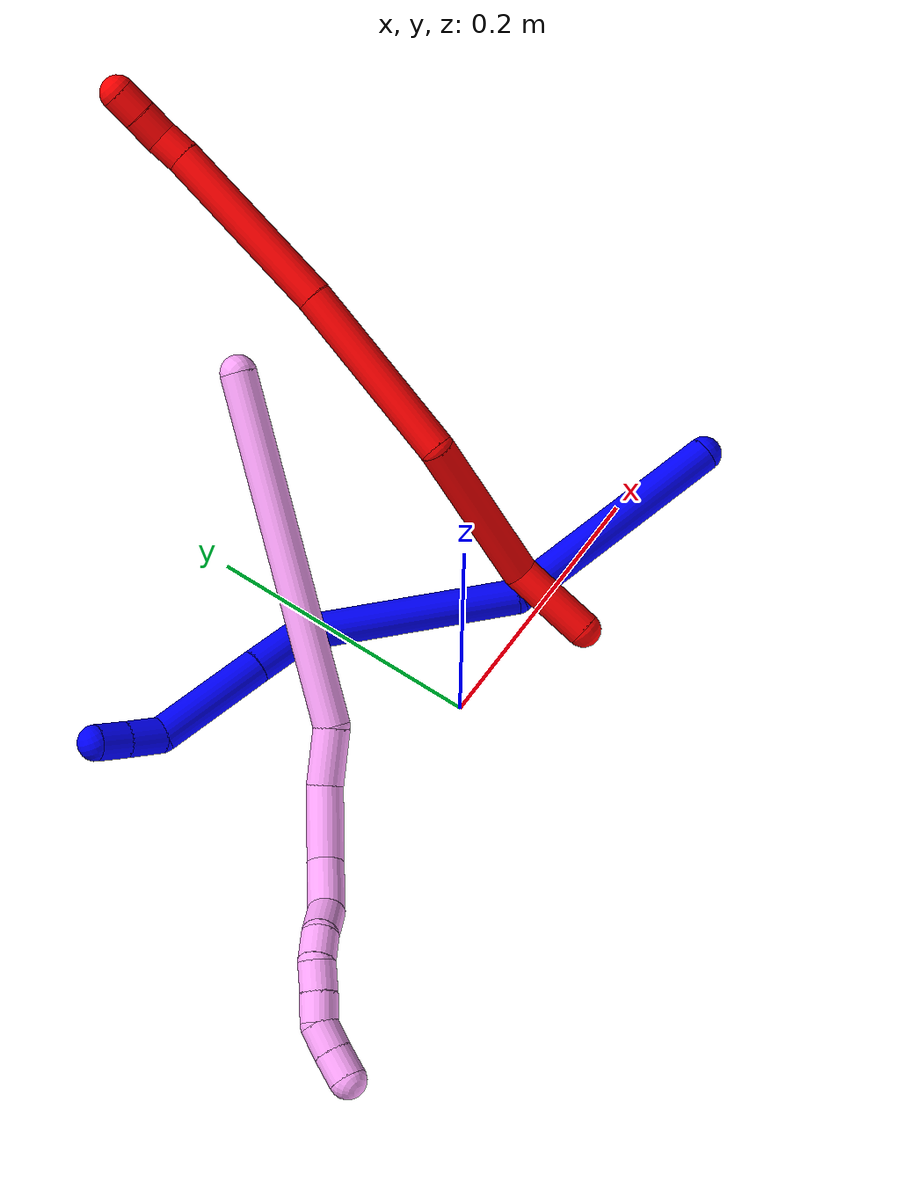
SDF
<sdf version="1.7">
 <world name="default">
  <model name="1">
   <static>0</static>
   <link name="1">
    <collision name="collision-cylinder-e_1_1_4">
     <pose>-0.078314 0.033457 -0.013415 -1.95212 -1.13943 1.51633</pose>
     <geometry><cylinder><radius>0.0125</radius><length>0.172424</length></cylinder></geometry>
     <surface>
      <friction><ode><mu>1.16</mu><mu2>1.16</mu2><slip1>0</slip1><slip2>0</slip2></ode></friction>
      <contact><ode><kp>1e+06</kp><kd>1</kd><max_vel>0</max_vel><min_depth>0.001</min_depth></ode></contact>
     </surface>
    </collision>
    <visual name="visual-cylinder-e_1_1_4">
     <pose>-0.078314 0.033457 -0.013415 -1.95212 -1.13943 1.51633</pose>
     <geometry><cylinder><radius>0.0125</radius><length>0.172424</length></cylinder></geometry>
     <material><ambient>0 0 1 1</ambient></material>
    </visual>
    <collision name="collision-cylinder-e_2_4_5">
     <pose>-0.215587 0.110437 -0.006662 -1.13688 -0.887823 0.589842</pose>
     <geometry><cylinder><radius>0.0125</radius><length>0.152012</length></cylinder></geometry>
     <surface>
      <friction><ode><mu>1.16</mu><mu2>1.16</mu2><slip1>0</slip1><slip2>0</slip2></ode></friction>
      <contact><ode><kp>1e+06</kp><kd>1</kd><max_vel>0</max_vel><min_depth>0.001</min_depth></ode></contact>
     </surface>
    </collision>
    <visual name="visual-cylinder-e_2_4_5">
     <pose>-0.215587 0.110437 -0.006662 -1.13688 -0.887823 0.589842</pose>
     <geometry><cylinder><radius>0.0125</radius><length>0.152012</length></cylinder></geometry>
     <material><ambient>0 0 1 1</ambient></material>
    </visual>
    <collision name="collision-cylinder-e_3_5_6">
     <pose>-0.295203 0.159444 0.011893 -1.85656 -1.30086 1.58725</pose>
     <geometry><cylinder><radius>0.0125</radius><length>0.042869</length></cylinder></geometry>
     <surface>
      <friction><ode><mu>1.16</mu><mu2>1.16</mu2><slip1>0</slip1><slip2>0</slip2></ode></friction>
      <contact><ode><kp>1e+06</kp><kd>1</kd><max_vel>0</max_vel><min_depth>0.001</min_depth></ode></contact>
     </surface>
    </collision>
    <visual name="visual-cylinder-e_3_5_6">
     <pose>-0.295203 0.159444 0.011893 -1.85656 -1.30086 1.58725</pose>
     <geometry><cylinder><radius>0.0125</radius><length>0.042869</length></cylinder></geometry>
     <material><ambient>0 0 1 1</ambient></material>
    </visual>
    <collision name="collision-cylinder-e_4_6_7">
     <pose>-0.355576 0.176206 0.006402 -1.90216 -1.27905 1.61241</pose>
     <geometry><cylinder><radius>0.0125</radius><length>0.082933</length></cylinder></geometry>
     <surface>
      <friction><ode><mu>1.16</mu><mu2>1.16</mu2><slip1>0</slip1><slip2>0</slip2></ode></friction>
      <contact><ode><kp>1e+06</kp><kd>1</kd><max_vel>0</max_vel><min_depth>0.001</min_depth></ode></contact>
     </surface>
    </collision>
    <visual name="visual-cylinder-e_4_6_7">
     <pose>-0.355576 0.176206 0.006402 -1.90216 -1.27905 1.61241</pose>
     <geometry><cylinder><radius>0.0125</radius><length>0.082933</length></cylinder></geometry>
     <material><ambient>0 0 1 1</ambient></material>
    </visual>
    <collision name="collision-cylinder-e_5_7_8">
     <pose>-0.407197 0.190166 0.007751 -0.473837 -1.11223 0.297927</pose>
     <geometry><cylinder><radius>0.0125</radius><length>0.026556</length></cylinder></geometry>
     <surface>
      <friction><ode><mu>1.16</mu><mu2>1.16</mu2><slip1>0</slip1><slip2>0</slip2></ode></friction>
      <contact><ode><kp>1e+06</kp><kd>1</kd><max_vel>0</max_vel><min_depth>0.001</min_depth></ode></contact>
     </surface>
    </collision>
    <visual name="visual-cylinder-e_5_7_8">
     <pose>-0.407197 0.190166 0.007751 -0.473837 -1.11223 0.297927</pose>
     <geometry><cylinder><radius>0.0125</radius><length>0.026556</length></cylinder></geometry>
     <material><ambient>0 0 1 1</ambient></material>
    </visual>
    <collision name="collision-cylinder-e_6_8_2">
     <pose>-0.429517 0.194251 0.017901 -0.277853 -1.1142 0.173762</pose>
     <geometry><cylinder><radius>0.0125</radius><length>0.023205</length></cylinder></geometry>
     <surface>
      <friction><ode><mu>1.16</mu><mu2>1.16</mu2><slip1>0</slip1><slip2>0</slip2></ode></friction>
      <contact><ode><kp>1e+06</kp><kd>1</kd><max_vel>0</max_vel><min_depth>0.001</min_depth></ode></contact>
     </surface>
    </collision>
    <visual name="visual-cylinder-e_6_8_2">
     <pose>-0.429517 0.194251 0.017901 -0.277853 -1.1142 0.173762</pose>
     <geometry><cylinder><radius>0.0125</radius><length>0.023205</length></cylinder></geometry>
     <material><ambient>0 0 1 1</ambient></material>
    </visual>
    <collision name="collision-sphere-2">
     <pose>-0.439931 0.195655 0.02282 0 -0 0</pose>
     <geometry><sphere><radius>0.0125</radius></sphere></geometry>
     <surface>
      <friction><ode><mu>1.16</mu><mu2>1.16</mu2><slip1>0</slip1><slip2>0</slip2></ode></friction>
      <contact><ode><kp>1e+06</kp><kd>1</kd><max_vel>0</max_vel><min_depth>0.001</min_depth></ode></contact>
     </surface>
    </collision>
    <visual name="visual-sphere-2">
     <pose>-0.439931 0.195655 0.02282 0 -0 0</pose>
     <geometry><sphere><radius>0.0125</radius></sphere></geometry>
     <material><ambient>0 0 1 1</ambient></material>
    </visual>
    <collision name="collision-sphere-4">
     <pose>-0.156629 0.066915 -0.026829 0 -0 0</pose>
     <geometry><sphere><radius>0.0125</radius></sphere></geometry>
     <surface>
      <friction><ode><mu>1.16</mu><mu2>1.16</mu2><slip1>0</slip1><slip2>0</slip2></ode></friction>
      <contact><ode><kp>1e+06</kp><kd>1</kd><max_vel>0</max_vel><min_depth>0.001</min_depth></ode></contact>
     </surface>
    </collision>
    <visual name="visual-sphere-4">
     <pose>-0.156629 0.066915 -0.026829 0 -0 0</pose>
     <geometry><sphere><radius>0.0125</radius></sphere></geometry>
     <material><ambient>0 0 1 1</ambient></material>
    </visual>
    <collision name="collision-sphere-1">
     <geometry><sphere><radius>0.0125</radius></sphere></geometry>
     <surface>
      <friction><ode><mu>1.16</mu><mu2>1.16</mu2><slip1>0</slip1><slip2>0</slip2></ode></friction>
      <contact><ode><kp>1e+06</kp><kd>1</kd><max_vel>0</max_vel><min_depth>0.001</min_depth></ode></contact>
     </surface>
    </collision>
    <visual name="visual-sphere-1">
     <geometry><sphere><radius>0.0125</radius></sphere></geometry>
     <material><ambient>0 0 1 1</ambient></material>
    </visual>
    <collision name="collision-sphere-8">
     <pose>-0.419103 0.192848 0.012982 0 -0 0</pose>
     <geometry><sphere><radius>0.0125</radius></sphere></geometry>
     <surface>
      <friction><ode><mu>1.16</mu><mu2>1.16</mu2><slip1>0</slip1><slip2>0</slip2></ode></friction>
      <contact><ode><kp>1e+06</kp><kd>1</kd><max_vel>0</max_vel><min_depth>0.001</min_depth></ode></contact>
     </surface>
    </collision>
    <visual name="visual-sphere-8">
     <pose>-0.419103 0.192848 0.012982 0 -0 0</pose>
     <geometry><sphere><radius>0.0125</radius></sphere></geometry>
     <material><ambient>0 0 1 1</ambient></material>
    </visual>
    <collision name="collision-sphere-5">
     <pose>-0.274545 0.15396 0.013504 0 -0 0</pose>
     <geometry><sphere><radius>0.0125</radius></sphere></geometry>
     <surface>
      <friction><ode><mu>1.16</mu><mu2>1.16</mu2><slip1>0</slip1><slip2>0</slip2></ode></friction>
      <contact><ode><kp>1e+06</kp><kd>1</kd><max_vel>0</max_vel><min_depth>0.001</min_depth></ode></contact>
     </surface>
    </collision>
    <visual name="visual-sphere-5">
     <pose>-0.274545 0.15396 0.013504 0 -0 0</pose>
     <geometry><sphere><radius>0.0125</radius></sphere></geometry>
     <material><ambient>0 0 1 1</ambient></material>
    </visual>
    <collision name="collision-sphere-6">
     <pose>-0.315862 0.164928 0.010282 0 -0 0</pose>
     <geometry><sphere><radius>0.0125</radius></sphere></geometry>
     <surface>
      <friction><ode><mu>1.16</mu><mu2>1.16</mu2><slip1>0</slip1><slip2>0</slip2></ode></friction>
      <contact><ode><kp>1e+06</kp><kd>1</kd><max_vel>0</max_vel><min_depth>0.001</min_depth></ode></contact>
     </surface>
    </collision>
    <visual name="visual-sphere-6">
     <pose>-0.315862 0.164928 0.010282 0 -0 0</pose>
     <geometry><sphere><radius>0.0125</radius></sphere></geometry>
     <material><ambient>0 0 1 1</ambient></material>
    </visual>
    <collision name="collision-sphere-7">
     <pose>-0.39529 0.187484 0.002521 0 -0 0</pose>
     <geometry><sphere><radius>0.0125</radius></sphere></geometry>
     <surface>
      <friction><ode><mu>1.16</mu><mu2>1.16</mu2><slip1>0</slip1><slip2>0</slip2></ode></friction>
      <contact><ode><kp>1e+06</kp><kd>1</kd><max_vel>0</max_vel><min_depth>0.001</min_depth></ode></contact>
     </surface>
    </collision>
    <visual name="visual-sphere-7">
     <pose>-0.39529 0.187484 0.002521 0 -0 0</pose>
     <geometry><sphere><radius>0.0125</radius></sphere></geometry>
     <material><ambient>0 0 1 1</ambient></material>
    </visual>
    <inertial>
     <pose>-0.2184 0.107126 -0.003328 0 -0 0</pose>
     <mass>0.5</mass>
     <inertia>
      <ixx>0.000437</ixx>
      <ixy>0</ixy>
      <ixz>0</ixz>
      <iyy>0.000955</iyy>
      <iyz>0</iyz>
      <izz>0.000332</izz>
     </inertia>
    </inertial>
   </link>
   <pose>0.257367 -0.034937 0.029815 -0.766091 0.251937 -0.130501</pose>
  </model>
  <model name="2">
   <static>0</static>
   <link name="2">
    <collision name="collision-cylinder-e_1_1_4">
     <pose>-0.006319 0.003725 0.029011 -0.127688 -0.212781 0.013655</pose>
     <geometry><cylinder><radius>0.0125</radius><length>0.059849</length></cylinder></geometry>
     <surface>
      <friction><ode><mu>1.16</mu><mu2>1.16</mu2><slip1>0</slip1><slip2>0</slip2></ode></friction>
      <contact><ode><kp>1e+06</kp><kd>1</kd><max_vel>0</max_vel><min_depth>0.001</min_depth></ode></contact>
     </surface>
    </collision>
    <visual name="visual-cylinder-e_1_1_4">
     <pose>-0.006319 0.003725 0.029011 -0.127688 -0.212781 0.013655</pose>
     <geometry><cylinder><radius>0.0125</radius><length>0.059849</length></cylinder></geometry>
     <material><ambient>1 0 0 1</ambient></material>
    </visual>
    <collision name="collision-cylinder-e_2_4_5">
     <pose>0.000409 0.001152 0.114146 0.111743 0.227043 0.012753</pose>
     <geometry><cylinder><radius>0.0125</radius><length>0.115927</length></cylinder></geometry>
     <surface>
      <friction><ode><mu>1.16</mu><mu2>1.16</mu2><slip1>0</slip1><slip2>0</slip2></ode></friction>
      <contact><ode><kp>1e+06</kp><kd>1</kd><max_vel>0</max_vel><min_depth>0.001</min_depth></ode></contact>
     </surface>
    </collision>
    <visual name="visual-cylinder-e_2_4_5">
     <pose>0.000409 0.001152 0.114146 0.111743 0.227043 0.012753</pose>
     <geometry><cylinder><radius>0.0125</radius><length>0.115927</length></cylinder></geometry>
     <material><ambient>1 0 0 1</ambient></material>
    </visual>
    <collision name="collision-cylinder-e_3_5_6">
     <pose>0.005369 0.012099 0.233228 -0.267348 -0.123259 0.016596</pose>
     <geometry><cylinder><radius>0.0125</radius><length>0.131552</length></cylinder></geometry>
     <surface>
      <friction><ode><mu>1.16</mu><mu2>1.16</mu2><slip1>0</slip1><slip2>0</slip2></ode></friction>
      <contact><ode><kp>1e+06</kp><kd>1</kd><max_vel>0</max_vel><min_depth>0.001</min_depth></ode></contact>
     </surface>
    </collision>
    <visual name="visual-cylinder-e_3_5_6">
     <pose>0.005369 0.012099 0.233228 -0.267348 -0.123259 0.016596</pose>
     <geometry><cylinder><radius>0.0125</radius><length>0.131552</length></cylinder></geometry>
     <material><ambient>1 0 0 1</ambient></material>
    </visual>
    <collision name="collision-cylinder-e_4_6_7">
     <pose>-0.015684 0.04542 0.35806 -0.254214 -0.20011 0.025658</pose>
     <geometry><cylinder><radius>0.0125</radius><length>0.130461</length></cylinder></geometry>
     <surface>
      <friction><ode><mu>1.16</mu><mu2>1.16</mu2><slip1>0</slip1><slip2>0</slip2></ode></friction>
      <contact><ode><kp>1e+06</kp><kd>1</kd><max_vel>0</max_vel><min_depth>0.001</min_depth></ode></contact>
     </surface>
    </collision>
    <visual name="visual-cylinder-e_4_6_7">
     <pose>-0.015684 0.04542 0.35806 -0.254214 -0.20011 0.025658</pose>
     <geometry><cylinder><radius>0.0125</radius><length>0.130461</length></cylinder></geometry>
     <material><ambient>1 0 0 1</ambient></material>
    </visual>
    <collision name="collision-cylinder-e_5_7_8">
     <pose>-0.031136 0.06308 0.429718 -0.160371 -0.245688 0.019842</pose>
     <geometry><cylinder><radius>0.0125</radius><length>0.020436</length></cylinder></geometry>
     <surface>
      <friction><ode><mu>1.16</mu><mu2>1.16</mu2><slip1>0</slip1><slip2>0</slip2></ode></friction>
      <contact><ode><kp>1e+06</kp><kd>1</kd><max_vel>0</max_vel><min_depth>0.001</min_depth></ode></contact>
     </surface>
    </collision>
    <visual name="visual-cylinder-e_5_7_8">
     <pose>-0.031136 0.06308 0.429718 -0.160371 -0.245688 0.019842</pose>
     <geometry><cylinder><radius>0.0125</radius><length>0.020436</length></cylinder></geometry>
     <material><ambient>1 0 0 1</ambient></material>
    </visual>
    <collision name="collision-cylinder-e_6_8_9">
     <pose>-0.034018 0.06439 0.450219 0.025472 -0.03703 -0.000472</pose>
     <geometry><cylinder><radius>0.0125</radius><length>0.021454</length></cylinder></geometry>
     <surface>
      <friction><ode><mu>1.16</mu><mu2>1.16</mu2><slip1>0</slip1><slip2>0</slip2></ode></friction>
      <contact><ode><kp>1e+06</kp><kd>1</kd><max_vel>0</max_vel><min_depth>0.001</min_depth></ode></contact>
     </surface>
    </collision>
    <visual name="visual-cylinder-e_6_8_9">
     <pose>-0.034018 0.06439 0.450219 0.025472 -0.03703 -0.000472</pose>
     <geometry><cylinder><radius>0.0125</radius><length>0.021454</length></cylinder></geometry>
     <material><ambient>1 0 0 1</ambient></material>
    </visual>
    <collision name="collision-cylinder-e_7_9_2">
     <pose>-0.035105 0.064245 0.471071 -0.012662 -0.067921 0.00043</pose>
     <geometry><cylinder><radius>0.0125</radius><length>0.020321</length></cylinder></geometry>
     <surface>
      <friction><ode><mu>1.16</mu><mu2>1.16</mu2><slip1>0</slip1><slip2>0</slip2></ode></friction>
      <contact><ode><kp>1e+06</kp><kd>1</kd><max_vel>0</max_vel><min_depth>0.001</min_depth></ode></contact>
     </surface>
    </collision>
    <visual name="visual-cylinder-e_7_9_2">
     <pose>-0.035105 0.064245 0.471071 -0.012662 -0.067921 0.00043</pose>
     <geometry><cylinder><radius>0.0125</radius><length>0.020321</length></cylinder></geometry>
     <material><ambient>1 0 0 1</ambient></material>
    </visual>
    <collision name="collision-sphere-2">
     <pose>-0.035795 0.064373 0.481208 0 -0 0</pose>
     <geometry><sphere><radius>0.0125</radius></sphere></geometry>
     <surface>
      <friction><ode><mu>1.16</mu><mu2>1.16</mu2><slip1>0</slip1><slip2>0</slip2></ode></friction>
      <contact><ode><kp>1e+06</kp><kd>1</kd><max_vel>0</max_vel><min_depth>0.001</min_depth></ode></contact>
     </surface>
    </collision>
    <visual name="visual-sphere-2">
     <pose>-0.035795 0.064373 0.481208 0 -0 0</pose>
     <geometry><sphere><radius>0.0125</radius></sphere></geometry>
     <material><ambient>1 0 0 1</ambient></material>
    </visual>
    <collision name="collision-sphere-9">
     <pose>-0.034416 0.064117 0.460935 0 -0 0</pose>
     <geometry><sphere><radius>0.0125</radius></sphere></geometry>
     <surface>
      <friction><ode><mu>1.16</mu><mu2>1.16</mu2><slip1>0</slip1><slip2>0</slip2></ode></friction>
      <contact><ode><kp>1e+06</kp><kd>1</kd><max_vel>0</max_vel><min_depth>0.001</min_depth></ode></contact>
     </surface>
    </collision>
    <visual name="visual-sphere-9">
     <pose>-0.034416 0.064117 0.460935 0 -0 0</pose>
     <geometry><sphere><radius>0.0125</radius></sphere></geometry>
     <material><ambient>1 0 0 1</ambient></material>
    </visual>
    <collision name="collision-sphere-4">
     <pose>-0.012639 0.007449 0.058023 0 -0 0</pose>
     <geometry><sphere><radius>0.0125</radius></sphere></geometry>
     <surface>
      <friction><ode><mu>1.16</mu><mu2>1.16</mu2><slip1>0</slip1><slip2>0</slip2></ode></friction>
      <contact><ode><kp>1e+06</kp><kd>1</kd><max_vel>0</max_vel><min_depth>0.001</min_depth></ode></contact>
     </surface>
    </collision>
    <visual name="visual-sphere-4">
     <pose>-0.012639 0.007449 0.058023 0 -0 0</pose>
     <geometry><sphere><radius>0.0125</radius></sphere></geometry>
     <material><ambient>1 0 0 1</ambient></material>
    </visual>
    <collision name="collision-sphere-1">
     <geometry><sphere><radius>0.0125</radius></sphere></geometry>
     <surface>
      <friction><ode><mu>1.16</mu><mu2>1.16</mu2><slip1>0</slip1><slip2>0</slip2></ode></friction>
      <contact><ode><kp>1e+06</kp><kd>1</kd><max_vel>0</max_vel><min_depth>0.001</min_depth></ode></contact>
     </surface>
    </collision>
    <visual name="visual-sphere-1">
     <geometry><sphere><radius>0.0125</radius></sphere></geometry>
     <material><ambient>1 0 0 1</ambient></material>
    </visual>
    <collision name="collision-sphere-8">
     <pose>-0.033621 0.064663 0.439502 0 -0 0</pose>
     <geometry><sphere><radius>0.0125</radius></sphere></geometry>
     <surface>
      <friction><ode><mu>1.16</mu><mu2>1.16</mu2><slip1>0</slip1><slip2>0</slip2></ode></friction>
      <contact><ode><kp>1e+06</kp><kd>1</kd><max_vel>0</max_vel><min_depth>0.001</min_depth></ode></contact>
     </surface>
    </collision>
    <visual name="visual-sphere-8">
     <pose>-0.033621 0.064663 0.439502 0 -0 0</pose>
     <geometry><sphere><radius>0.0125</radius></sphere></geometry>
     <material><ambient>1 0 0 1</ambient></material>
    </visual>
    <collision name="collision-sphere-5">
     <pose>0.013456 -0.005146 0.17027 0 -0 0</pose>
     <geometry><sphere><radius>0.0125</radius></sphere></geometry>
     <surface>
      <friction><ode><mu>1.16</mu><mu2>1.16</mu2><slip1>0</slip1><slip2>0</slip2></ode></friction>
      <contact><ode><kp>1e+06</kp><kd>1</kd><max_vel>0</max_vel><min_depth>0.001</min_depth></ode></contact>
     </surface>
    </collision>
    <visual name="visual-sphere-5">
     <pose>0.013456 -0.005146 0.17027 0 -0 0</pose>
     <geometry><sphere><radius>0.0125</radius></sphere></geometry>
     <material><ambient>1 0 0 1</ambient></material>
    </visual>
    <collision name="collision-sphere-6">
     <pose>-0.002718 0.029343 0.296185 0 -0 0</pose>
     <geometry><sphere><radius>0.0125</radius></sphere></geometry>
     <surface>
      <friction><ode><mu>1.16</mu><mu2>1.16</mu2><slip1>0</slip1><slip2>0</slip2></ode></friction>
      <contact><ode><kp>1e+06</kp><kd>1</kd><max_vel>0</max_vel><min_depth>0.001</min_depth></ode></contact>
     </surface>
    </collision>
    <visual name="visual-sphere-6">
     <pose>-0.002718 0.029343 0.296185 0 -0 0</pose>
     <geometry><sphere><radius>0.0125</radius></sphere></geometry>
     <material><ambient>1 0 0 1</ambient></material>
    </visual>
    <collision name="collision-sphere-7">
     <pose>-0.028651 0.061497 0.419934 0 -0 0</pose>
     <geometry><sphere><radius>0.0125</radius></sphere></geometry>
     <surface>
      <friction><ode><mu>1.16</mu><mu2>1.16</mu2><slip1>0</slip1><slip2>0</slip2></ode></friction>
      <contact><ode><kp>1e+06</kp><kd>1</kd><max_vel>0</max_vel><min_depth>0.001</min_depth></ode></contact>
     </surface>
    </collision>
    <visual name="visual-sphere-7">
     <pose>-0.028651 0.061497 0.419934 0 -0 0</pose>
     <geometry><sphere><radius>0.0125</radius></sphere></geometry>
     <material><ambient>1 0 0 1</ambient></material>
    </visual>
    <inertial>
     <pose>-0.007501 0.023699 0.240754 0 -0 0</pose>
     <mass>0.5</mass>
     <inertia>
      <ixx>0.000542</ixx>
      <ixy>0</ixy>
      <ixz>0</ixz>
      <iyy>0.000545</iyy>
      <iyz>0</iyz>
      <izz>-1.2e-05</izz>
     </inertia>
    </inertial>
   </link>
   <pose>0.095278 -0.038539 0.011498 -0.52923 -0.797329 -0.896157</pose>
  </model>
  <model name="4">
   <static>0</static>
   <link name="4">
    <collision name="collision-cylinder-e_1_1_4">
     <pose>-0.093285 0.011108 -0.077334 -2.99894 -0.873592 2.83788</pose>
     <geometry><cylinder><radius>0.0125</radius><length>0.24336</length></cylinder></geometry>
     <surface>
      <friction><ode><mu>1.16</mu><mu2>1.16</mu2><slip1>0</slip1><slip2>0</slip2></ode></friction>
      <contact><ode><kp>1e+06</kp><kd>1</kd><max_vel>0</max_vel><min_depth>0.001</min_depth></ode></contact>
     </surface>
    </collision>
    <visual name="visual-cylinder-e_1_1_4">
     <pose>-0.093285 0.011108 -0.077334 -2.99894 -0.873592 2.83788</pose>
     <geometry><cylinder><radius>0.0125</radius><length>0.24336</length></cylinder></geometry>
     <material><ambient>1 0.65098 0.996078 1</ambient></material>
    </visual>
    <collision name="collision-cylinder-e_2_4_5">
     <pose>-0.20483 0.019188 -0.16239 2.76788 -1.14448 -2.57061</pose>
     <geometry><cylinder><radius>0.0125</radius><length>0.04011</length></cylinder></geometry>
     <surface>
      <friction><ode><mu>1.16</mu><mu2>1.16</mu2><slip1>0</slip1><slip2>0</slip2></ode></friction>
      <contact><ode><kp>1e+06</kp><kd>1</kd><max_vel>0</max_vel><min_depth>0.001</min_depth></ode></contact>
     </surface>
    </collision>
    <visual name="visual-cylinder-e_2_4_5">
     <pose>-0.20483 0.019188 -0.16239 2.76788 -1.14448 -2.57061</pose>
     <geometry><cylinder><radius>0.0125</radius><length>0.04011</length></cylinder></geometry>
     <material><ambient>1 0.65098 0.996078 1</ambient></material>
    </visual>
    <collision name="collision-cylinder-e_3_5_6">
     <pose>-0.242277 0.0101 -0.186184 2.78107 -0.84057 -2.36722</pose>
     <geometry><cylinder><radius>0.0125</radius><length>0.051506</length></cylinder></geometry>
     <surface>
      <friction><ode><mu>1.16</mu><mu2>1.16</mu2><slip1>0</slip1><slip2>0</slip2></ode></friction>
      <contact><ode><kp>1e+06</kp><kd>1</kd><max_vel>0</max_vel><min_depth>0.001</min_depth></ode></contact>
     </surface>
    </collision>
    <visual name="visual-cylinder-e_3_5_6">
     <pose>-0.242277 0.0101 -0.186184 2.78107 -0.84057 -2.36722</pose>
     <geometry><cylinder><radius>0.0125</radius><length>0.051506</length></cylinder></geometry>
     <material><ambient>1 0.65098 0.996078 1</ambient></material>
    </visual>
    <collision name="collision-cylinder-e_4_6_7">
     <pose>-0.269713 -0.00393 -0.216303 2.62544 -0.472331 -1.47849</pose>
     <geometry><cylinder><radius>0.0125</radius><length>0.036269</length></cylinder></geometry>
     <surface>
      <friction><ode><mu>1.16</mu><mu2>1.16</mu2><slip1>0</slip1><slip2>0</slip2></ode></friction>
      <contact><ode><kp>1e+06</kp><kd>1</kd><max_vel>0</max_vel><min_depth>0.001</min_depth></ode></contact>
     </surface>
    </collision>
    <visual name="visual-cylinder-e_4_6_7">
     <pose>-0.269713 -0.00393 -0.216303 2.62544 -0.472331 -1.47849</pose>
     <geometry><cylinder><radius>0.0125</radius><length>0.036269</length></cylinder></geometry>
     <material><ambient>1 0.65098 0.996078 1</ambient></material>
    </visual>
    <collision name="collision-cylinder-e_5_7_8">
     <pose>-0.278507 -0.021839 -0.239664 2.32383 -0.039879 -0.091983</pose>
     <geometry><cylinder><radius>0.0125</radius><length>0.027268</length></cylinder></geometry>
     <surface>
      <friction><ode><mu>1.16</mu><mu2>1.16</mu2><slip1>0</slip1><slip2>0</slip2></ode></friction>
      <contact><ode><kp>1e+06</kp><kd>1</kd><max_vel>0</max_vel><min_depth>0.001</min_depth></ode></contact>
     </surface>
    </collision>
    <visual name="visual-cylinder-e_5_7_8">
     <pose>-0.278507 -0.021839 -0.239664 2.32383 -0.039879 -0.091983</pose>
     <geometry><cylinder><radius>0.0125</radius><length>0.027268</length></cylinder></geometry>
     <material><ambient>1 0.65098 0.996078 1</ambient></material>
    </visual>
    <collision name="collision-cylinder-e_6_8_9">
     <pose>-0.283234 -0.037827 -0.256472 2.4624 -0.409842 -1.06356</pose>
     <geometry><cylinder><radius>0.0125</radius><length>0.020995</length></cylinder></geometry>
     <surface>
      <friction><ode><mu>1.16</mu><mu2>1.16</mu2><slip1>0</slip1><slip2>0</slip2></ode></friction>
      <contact><ode><kp>1e+06</kp><kd>1</kd><max_vel>0</max_vel><min_depth>0.001</min_depth></ode></contact>
     </surface>
    </collision>
    <visual name="visual-cylinder-e_6_8_9">
     <pose>-0.283234 -0.037827 -0.256472 2.4624 -0.409842 -1.06356</pose>
     <geometry><cylinder><radius>0.0125</radius><length>0.020995</length></cylinder></geometry>
     <material><ambient>1 0.65098 0.996078 1</ambient></material>
    </visual>
    <collision name="collision-cylinder-e_7_9_10">
     <pose>-0.294256 -0.046204 -0.270979 2.82115 -0.746583 -2.3589</pose>
     <geometry><cylinder><radius>0.0125</radius><length>0.020141</length></cylinder></geometry>
     <surface>
      <friction><ode><mu>1.16</mu><mu2>1.16</mu2><slip1>0</slip1><slip2>0</slip2></ode></friction>
      <contact><ode><kp>1e+06</kp><kd>1</kd><max_vel>0</max_vel><min_depth>0.001</min_depth></ode></contact>
     </surface>
    </collision>
    <visual name="visual-cylinder-e_7_9_10">
     <pose>-0.294256 -0.046204 -0.270979 2.82115 -0.746583 -2.3589</pose>
     <geometry><cylinder><radius>0.0125</radius><length>0.020141</length></cylinder></geometry>
     <material><ambient>1 0.65098 0.996078 1</ambient></material>
    </visual>
    <collision name="collision-cylinder-e_8_10_11">
     <pose>-0.308021 -0.051441 -0.284776 2.73633 -0.753668 -2.18391</pose>
     <geometry><cylinder><radius>0.0125</radius><length>0.02024</length></cylinder></geometry>
     <surface>
      <friction><ode><mu>1.16</mu><mu2>1.16</mu2><slip1>0</slip1><slip2>0</slip2></ode></friction>
      <contact><ode><kp>1e+06</kp><kd>1</kd><max_vel>0</max_vel><min_depth>0.001</min_depth></ode></contact>
     </surface>
    </collision>
    <visual name="visual-cylinder-e_8_10_11">
     <pose>-0.308021 -0.051441 -0.284776 2.73633 -0.753668 -2.18391</pose>
     <geometry><cylinder><radius>0.0125</radius><length>0.02024</length></cylinder></geometry>
     <material><ambient>1 0.65098 0.996078 1</ambient></material>
    </visual>
    <collision name="collision-cylinder-e_9_11_12">
     <pose>-0.319875 -0.053874 -0.300291 -3.08709 -0.513231 2.93459</pose>
     <geometry><cylinder><radius>0.0125</radius><length>0.020078</length></cylinder></geometry>
     <surface>
      <friction><ode><mu>1.16</mu><mu2>1.16</mu2><slip1>0</slip1><slip2>0</slip2></ode></friction>
      <contact><ode><kp>1e+06</kp><kd>1</kd><max_vel>0</max_vel><min_depth>0.001</min_depth></ode></contact>
     </surface>
    </collision>
    <visual name="visual-cylinder-e_9_11_12">
     <pose>-0.319875 -0.053874 -0.300291 -3.08709 -0.513231 2.93459</pose>
     <geometry><cylinder><radius>0.0125</radius><length>0.020078</length></cylinder></geometry>
     <material><ambient>1 0.65098 0.996078 1</ambient></material>
    </visual>
    <collision name="collision-cylinder-e_10_12_2">
     <pose>-0.329119 -0.052861 -0.318047 -3.08219 -0.44537 2.88069</pose>
     <geometry><cylinder><radius>0.0125</radius><length>0.020033</length></cylinder></geometry>
     <surface>
      <friction><ode><mu>1.16</mu><mu2>1.16</mu2><slip1>0</slip1><slip2>0</slip2></ode></friction>
      <contact><ode><kp>1e+06</kp><kd>1</kd><max_vel>0</max_vel><min_depth>0.001</min_depth></ode></contact>
     </surface>
    </collision>
    <visual name="visual-cylinder-e_10_12_2">
     <pose>-0.329119 -0.052861 -0.318047 -3.08219 -0.44537 2.88069</pose>
     <geometry><cylinder><radius>0.0125</radius><length>0.020033</length></cylinder></geometry>
     <material><ambient>1 0.65098 0.996078 1</ambient></material>
    </visual>
    <collision name="collision-sphere-2">
     <pose>-0.333434 -0.052325 -0.32707 0 -0 0</pose>
     <geometry><sphere><radius>0.0125</radius></sphere></geometry>
     <surface>
      <friction><ode><mu>1.16</mu><mu2>1.16</mu2><slip1>0</slip1><slip2>0</slip2></ode></friction>
      <contact><ode><kp>1e+06</kp><kd>1</kd><max_vel>0</max_vel><min_depth>0.001</min_depth></ode></contact>
     </surface>
    </collision>
    <visual name="visual-sphere-2">
     <pose>-0.333434 -0.052325 -0.32707 0 -0 0</pose>
     <geometry><sphere><radius>0.0125</radius></sphere></geometry>
     <material><ambient>1 0.65098 0.996078 1</ambient></material>
    </visual>
    <collision name="collision-sphere-12">
     <pose>-0.324804 -0.053398 -0.309023 0 -0 0</pose>
     <geometry><sphere><radius>0.0125</radius></sphere></geometry>
     <surface>
      <friction><ode><mu>1.16</mu><mu2>1.16</mu2><slip1>0</slip1><slip2>0</slip2></ode></friction>
      <contact><ode><kp>1e+06</kp><kd>1</kd><max_vel>0</max_vel><min_depth>0.001</min_depth></ode></contact>
     </surface>
    </collision>
    <visual name="visual-sphere-12">
     <pose>-0.324804 -0.053398 -0.309023 0 -0 0</pose>
     <geometry><sphere><radius>0.0125</radius></sphere></geometry>
     <material><ambient>1 0.65098 0.996078 1</ambient></material>
    </visual>
    <collision name="collision-sphere-11">
     <pose>-0.314946 -0.054351 -0.291558 0 -0 0</pose>
     <geometry><sphere><radius>0.0125</radius></sphere></geometry>
     <surface>
      <friction><ode><mu>1.16</mu><mu2>1.16</mu2><slip1>0</slip1><slip2>0</slip2></ode></friction>
      <contact><ode><kp>1e+06</kp><kd>1</kd><max_vel>0</max_vel><min_depth>0.001</min_depth></ode></contact>
     </surface>
    </collision>
    <visual name="visual-sphere-11">
     <pose>-0.314946 -0.054351 -0.291558 0 -0 0</pose>
     <geometry><sphere><radius>0.0125</radius></sphere></geometry>
     <material><ambient>1 0.65098 0.996078 1</ambient></material>
    </visual>
    <collision name="collision-sphere-10">
     <pose>-0.301095 -0.048532 -0.277995 0 -0 0</pose>
     <geometry><sphere><radius>0.0125</radius></sphere></geometry>
     <surface>
      <friction><ode><mu>1.16</mu><mu2>1.16</mu2><slip1>0</slip1><slip2>0</slip2></ode></friction>
      <contact><ode><kp>1e+06</kp><kd>1</kd><max_vel>0</max_vel><min_depth>0.001</min_depth></ode></contact>
     </surface>
    </collision>
    <visual name="visual-sphere-10">
     <pose>-0.301095 -0.048532 -0.277995 0 -0 0</pose>
     <geometry><sphere><radius>0.0125</radius></sphere></geometry>
     <material><ambient>1 0.65098 0.996078 1</ambient></material>
    </visual>
    <collision name="collision-sphere-9">
     <pose>-0.287417 -0.043875 -0.263964 0 -0 0</pose>
     <geometry><sphere><radius>0.0125</radius></sphere></geometry>
     <surface>
      <friction><ode><mu>1.16</mu><mu2>1.16</mu2><slip1>0</slip1><slip2>0</slip2></ode></friction>
      <contact><ode><kp>1e+06</kp><kd>1</kd><max_vel>0</max_vel><min_depth>0.001</min_depth></ode></contact>
     </surface>
    </collision>
    <visual name="visual-sphere-9">
     <pose>-0.287417 -0.043875 -0.263964 0 -0 0</pose>
     <geometry><sphere><radius>0.0125</radius></sphere></geometry>
     <material><ambient>1 0.65098 0.996078 1</ambient></material>
    </visual>
    <collision name="collision-sphere-4">
     <pose>-0.18657 0.022215 -0.154669 0 -0 0</pose>
     <geometry><sphere><radius>0.0125</radius></sphere></geometry>
     <surface>
      <friction><ode><mu>1.16</mu><mu2>1.16</mu2><slip1>0</slip1><slip2>0</slip2></ode></friction>
      <contact><ode><kp>1e+06</kp><kd>1</kd><max_vel>0</max_vel><min_depth>0.001</min_depth></ode></contact>
     </surface>
    </collision>
    <visual name="visual-sphere-4">
     <pose>-0.18657 0.022215 -0.154669 0 -0 0</pose>
     <geometry><sphere><radius>0.0125</radius></sphere></geometry>
     <material><ambient>1 0.65098 0.996078 1</ambient></material>
    </visual>
    <collision name="collision-sphere-1">
     <geometry><sphere><radius>0.0125</radius></sphere></geometry>
     <surface>
      <friction><ode><mu>1.16</mu><mu2>1.16</mu2><slip1>0</slip1><slip2>0</slip2></ode></friction>
      <contact><ode><kp>1e+06</kp><kd>1</kd><max_vel>0</max_vel><min_depth>0.001</min_depth></ode></contact>
     </surface>
    </collision>
    <visual name="visual-sphere-1">
     <geometry><sphere><radius>0.0125</radius></sphere></geometry>
     <material><ambient>1 0.65098 0.996078 1</ambient></material>
    </visual>
    <collision name="collision-sphere-8">
     <pose>-0.279051 -0.031779 -0.24898 0 -0 0</pose>
     <geometry><sphere><radius>0.0125</radius></sphere></geometry>
     <surface>
      <friction><ode><mu>1.16</mu><mu2>1.16</mu2><slip1>0</slip1><slip2>0</slip2></ode></friction>
      <contact><ode><kp>1e+06</kp><kd>1</kd><max_vel>0</max_vel><min_depth>0.001</min_depth></ode></contact>
     </surface>
    </collision>
    <visual name="visual-sphere-8">
     <pose>-0.279051 -0.031779 -0.24898 0 -0 0</pose>
     <geometry><sphere><radius>0.0125</radius></sphere></geometry>
     <material><ambient>1 0.65098 0.996078 1</ambient></material>
    </visual>
    <collision name="collision-sphere-5">
     <pose>-0.22309 0.01616 -0.17011 0 -0 0</pose>
     <geometry><sphere><radius>0.0125</radius></sphere></geometry>
     <surface>
      <friction><ode><mu>1.16</mu><mu2>1.16</mu2><slip1>0</slip1><slip2>0</slip2></ode></friction>
      <contact><ode><kp>1e+06</kp><kd>1</kd><max_vel>0</max_vel><min_depth>0.001</min_depth></ode></contact>
     </surface>
    </collision>
    <visual name="visual-sphere-5">
     <pose>-0.22309 0.01616 -0.17011 0 -0 0</pose>
     <geometry><sphere><radius>0.0125</radius></sphere></geometry>
     <material><ambient>1 0.65098 0.996078 1</ambient></material>
    </visual>
    <collision name="collision-sphere-6">
     <pose>-0.261463 0.00404 -0.202258 0 -0 0</pose>
     <geometry><sphere><radius>0.0125</radius></sphere></geometry>
     <surface>
      <friction><ode><mu>1.16</mu><mu2>1.16</mu2><slip1>0</slip1><slip2>0</slip2></ode></friction>
      <contact><ode><kp>1e+06</kp><kd>1</kd><max_vel>0</max_vel><min_depth>0.001</min_depth></ode></contact>
     </surface>
    </collision>
    <visual name="visual-sphere-6">
     <pose>-0.261463 0.00404 -0.202258 0 -0 0</pose>
     <geometry><sphere><radius>0.0125</radius></sphere></geometry>
     <material><ambient>1 0.65098 0.996078 1</ambient></material>
    </visual>
    <collision name="collision-sphere-7">
     <pose>-0.277964 -0.0119 -0.230348 0 -0 0</pose>
     <geometry><sphere><radius>0.0125</radius></sphere></geometry>
     <surface>
      <friction><ode><mu>1.16</mu><mu2>1.16</mu2><slip1>0</slip1><slip2>0</slip2></ode></friction>
      <contact><ode><kp>1e+06</kp><kd>1</kd><max_vel>0</max_vel><min_depth>0.001</min_depth></ode></contact>
     </surface>
    </collision>
    <visual name="visual-sphere-7">
     <pose>-0.277964 -0.0119 -0.230348 0 -0 0</pose>
     <geometry><sphere><radius>0.0125</radius></sphere></geometry>
     <material><ambient>1 0.65098 0.996078 1</ambient></material>
    </visual>
    <inertial>
     <pose>-0.183792 -0.003303 -0.156621 0 -0 0</pose>
     <mass>0.5</mass>
     <inertia>
      <ixx>-0.000559</ixx>
      <ixy>0</ixy>
      <ixz>0</ixz>
      <iyy>0.001418</iyy>
      <iyz>0</iyz>
      <izz>0.000825</izz>
     </inertia>
    </inertial>
   </link>
   <pose>0.04311 0.211541 0.177673 -2.02821 -0.965218 0.117087</pose>
  </model>
 </world>
</sdf>
